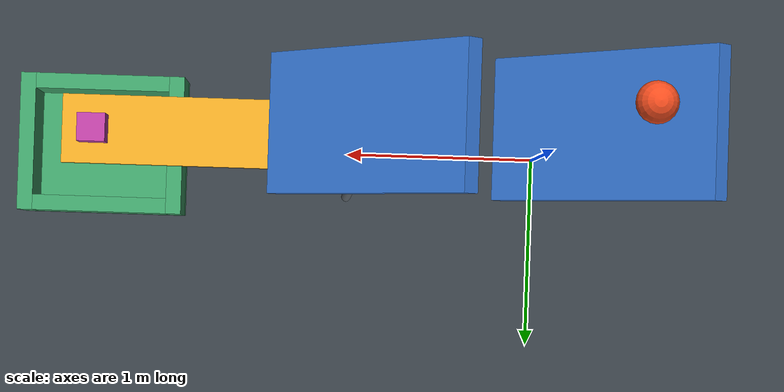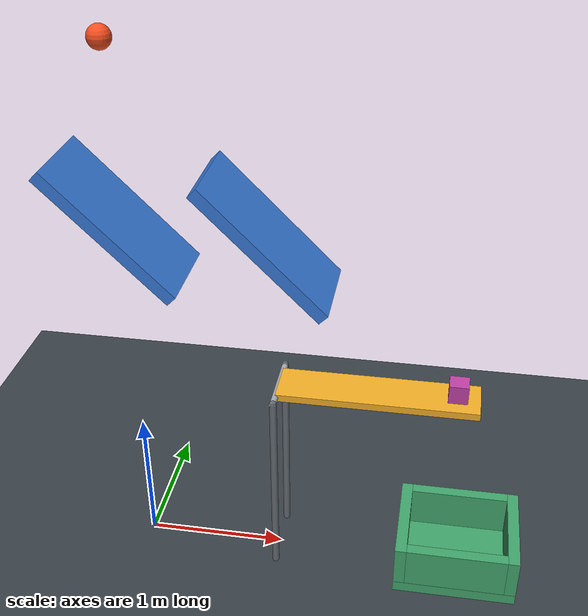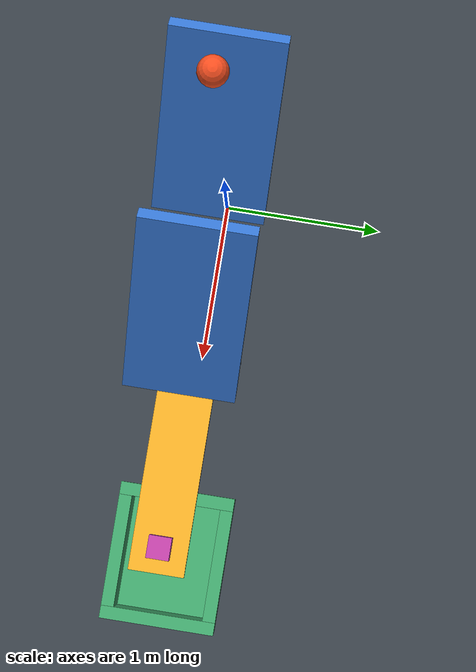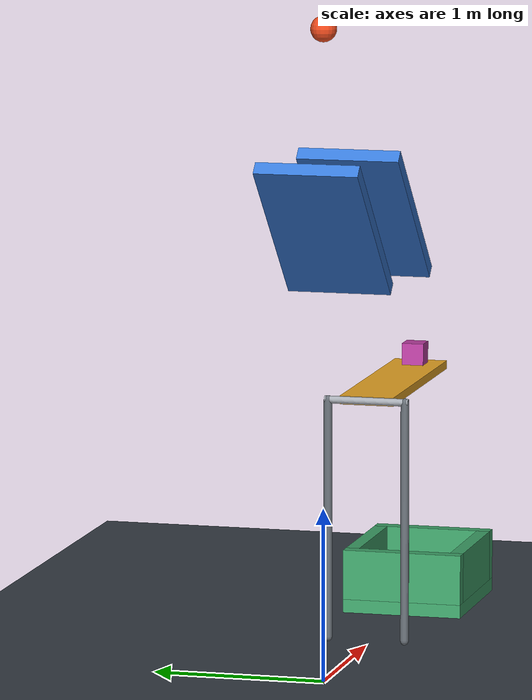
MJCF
<mujoco model="two_ricochets_and_release">
  <compiler angle="radian" inertiafromgeom="true"/>
  <option timestep="0.002" gravity="0 0 -9.81" integrator="implicitfast" solver="Newton" iterations="100" tolerance="1e-10" cone="elliptic"/>
  <size njmax="200" nconmax="100"/>

  <visual>
    <global azimuth="135" elevation="-18"/>
    <map znear="0.01"/>
  </visual>

  <worldbody>
    <light name="overhead_light" pos="0 -3 6" dir="0 0.4 -1" diffuse="0.85 0.85 0.85"/>
    <camera name="overview" pos="5 -8 4.3" xyaxes="0.894427 0.447214 0 -0.126491 0.252982 0.959166"/>

    <geom name="floor" type="plane" pos="0 0 0" size="6 6 0.1" friction="0.9 0.02 0.05" condim="6" solref="0.008 1" solimp="0.99 0.99 0.001" priority="2" rgba="0.22 0.25 0.28 1"/>

    <!-- Both walls slope downward toward +x. Their opposite faces provide the two rebounds. -->
    <body name="wall1" pos="0 0 2.6">
      <geom name="wall1_face" type="box" size="0.55 0.30 0.04" quat="0.923879533 0 0.382683432 0" friction="0 0 0" condim="1" solref="-40000 -12" solimp="0.99 0.99 0.001" priority="3" rgba="0.22 0.48 0.85 1"/>
    </body>

    <body name="wall2" pos="0.95 0 2.56">
      <geom name="wall2_face" type="box" size="0.55 0.30 0.04" quat="0.923879533 0 0.382683432 0" friction="0 0 0" condim="1" solref="-40000 -12" solimp="0.99 0.99 0.001" priority="3" rgba="0.22 0.48 0.85 1"/>
    </body>

    <!-- At x=0, wall1's upper face is z=2.656568542. The ball's bottom starts exactly 1 m above it. -->
    <body name="ball" pos="0 0 3.731568542">
      <freejoint name="ball_free"/>
      <geom name="ball_sphere" type="sphere" size="0.075" mass="1.2" friction="0.8 0.02 0.05" condim="6" solref="0.008 1" solimp="0.99 0.99 0.001" rgba="0.95 0.30 0.12 1"/>
    </body>

    <body name="hinge_support" pos="1 0 0">
      <geom name="hinge_support_left" type="capsule" fromto="0 -0.23 0.04 0 -0.23 1.45" size="0.025" rgba="0.4 0.43 0.46 1"/>
      <geom name="hinge_support_right" type="capsule" fromto="0 0.23 0.04 0 0.23 1.45" size="0.025" rgba="0.4 0.43 0.46 1"/>
      <geom name="hinge_support_axle" type="cylinder" pos="0 0 1.45" size="0.022 0.25" quat="0.707106781 0.707106781 0 0" contype="0" conaffinity="0" rgba="0.65 0.67 0.70 1"/>
    </body>

    <!-- Static hinge friction holds the loaded shelf; the ball's impact drives it to the lower stop. -->
    <body name="target" pos="1 0 1.45">
      <joint name="target_hinge" type="hinge" axis="0 1 0" limited="true" range="0 1.52" frictionloss="0.7" damping="0.003" solreffriction="0.004 1" solimpfriction="0.999 0.999 0.001" solreflimit="0.004 1" solimplimit="0.999 0.999 0.001"/>
      <geom name="target_shelf" type="box" pos="0.675 0 0" size="0.675 0.16 0.025" mass="0.05" friction="0.2 0.005 0.005" condim="3" solref="0.004 1" solimp="0.99 0.99 0.001" priority="2" rgba="0.95 0.68 0.15 1"/>
    </body>

    <body name="block" pos="2.2 0 1.54">
      <freejoint name="block_free"/>
      <geom name="block_payload" type="box" size="0.065 0.065 0.065" mass="0.02" friction="0.9 0.02 0.02" condim="6" solref="0.008 1" solimp="0.99 0.99 0.001" rgba="0.75 0.25 0.65 1"/>
    </body>

    <body name="bin" pos="2.30 0 0">
      <geom name="bin_bottom" type="box" pos="0 0 0.04" size="0.43 0.36 0.04" friction="0.9 0.02 0.05" condim="6" solref="0.008 1" solimp="0.99 0.99 0.001" priority="2" rgba="0.25 0.65 0.42 1"/>
      <geom name="bin_left" type="box" pos="-0.39 0 0.23" size="0.04 0.36 0.15" friction="0.9 0.02 0.05" condim="6" solref="0.008 1" solimp="0.99 0.99 0.001" priority="2" rgba="0.25 0.65 0.42 1"/>
      <geom name="bin_right" type="box" pos="0.39 0 0.23" size="0.04 0.36 0.15" friction="0.9 0.02 0.05" condim="6" solref="0.008 1" solimp="0.99 0.99 0.001" priority="2" rgba="0.25 0.65 0.42 1"/>
      <geom name="bin_front" type="box" pos="0 -0.32 0.23" size="0.35 0.04 0.15" friction="0.9 0.02 0.05" condim="6" solref="0.008 1" solimp="0.99 0.99 0.001" priority="2" rgba="0.25 0.65 0.42 1"/>
      <geom name="bin_back" type="box" pos="0 0.32 0.23" size="0.35 0.04 0.15" friction="0.9 0.02 0.05" condim="6" solref="0.008 1" solimp="0.99 0.99 0.001" priority="2" rgba="0.25 0.65 0.42 1"/>
    </body>
  </worldbody>

  <keyframe>
    <key name="start" qpos="0 0 3.731568542 1 0 0 0 0 2.2 0 1.54 1 0 0 0" qvel="0 0 0 0 0 0 0 0 0 0 0 0 0"/>
  </keyframe>
</mujoco>
